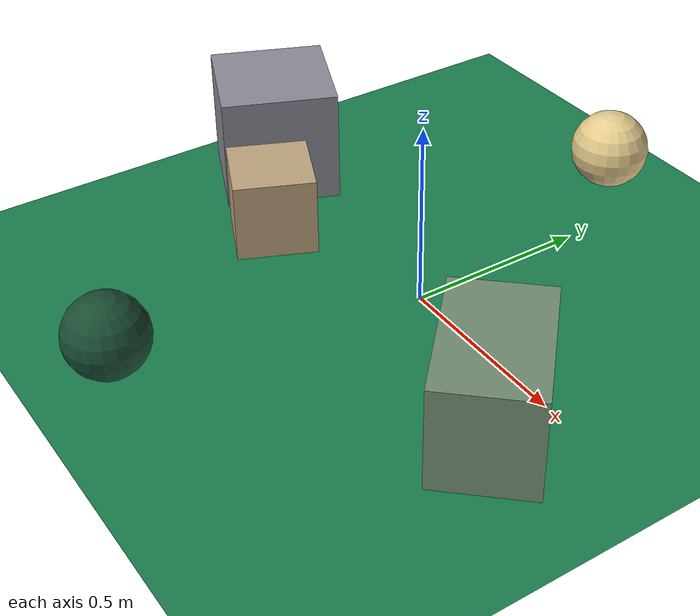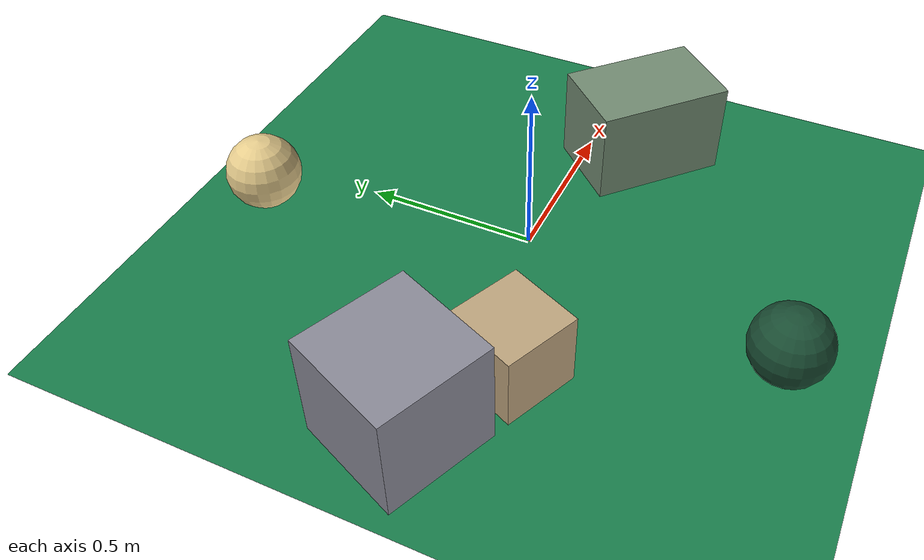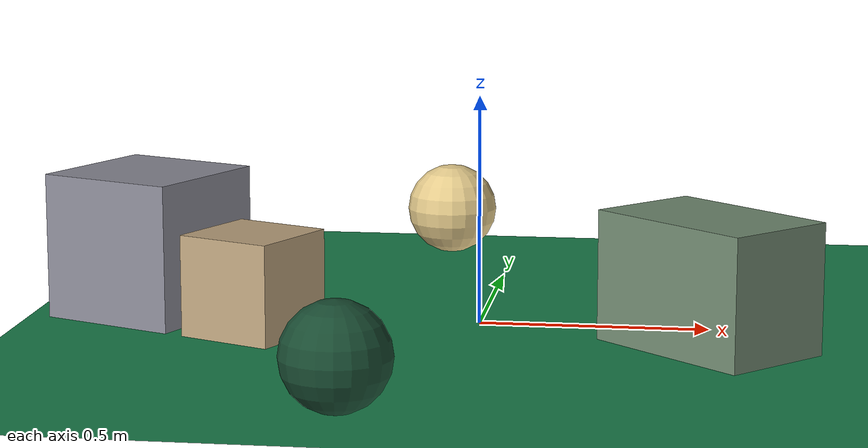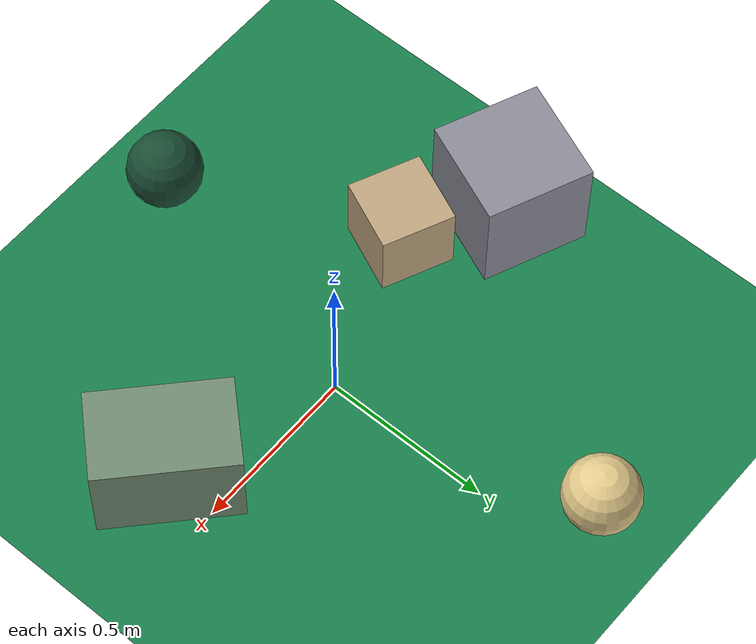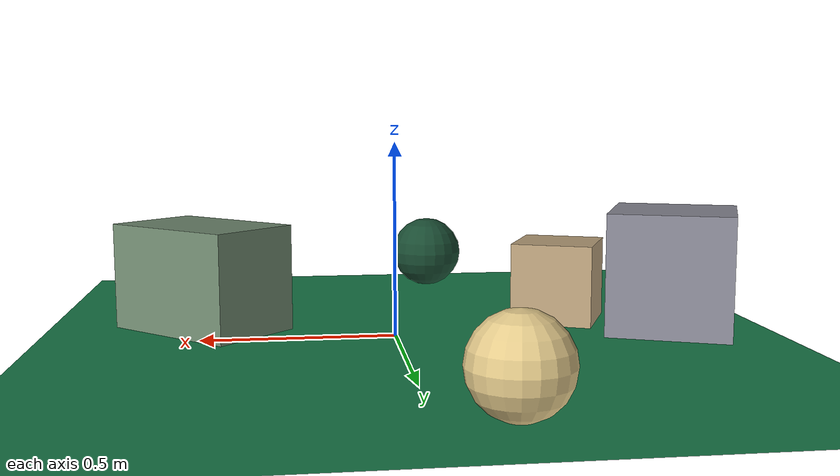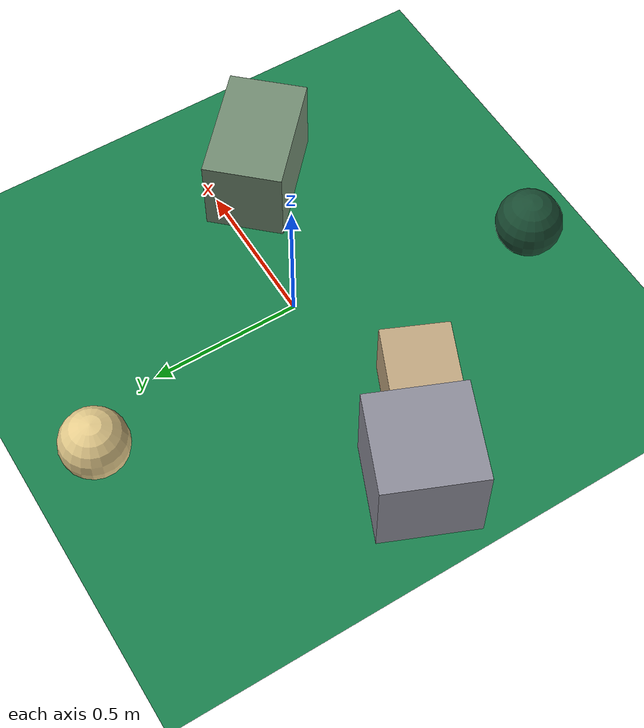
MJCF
<mujoco>
   <asset>
<texture type="skybox" builtin="gradient" rgb1="0.7 0.2 0.3" rgb2="0.8 0.5 0.6" width="500" height="500"/>
<texture name="checker_0" builtin="checker" rgb1="0.5 0.3 0.6" rgb2="0.4 0.8 0.3" width="500" height="500"/>
<texture name="flat_1" builtin="flat" rgb1="0.1 0.3 0.2" rgb2="0.1 0.3 0.2"  width="500" height="500"/>
<texture name="gradient_2" builtin="gradient" rgb1="0.3 0.7 0.3" rgb2="0.8 0.4 0.9" width="500" height="500"/>
<texture name="gradient_3" builtin="gradient" rgb1="0.8 0.5 0.1" rgb2="0.7 0.8 0.9" width="500" height="500"/>
<texture name="checker_4" builtin="checker" rgb1="0.9 0.7 0.2" rgb2="0.9 0.9 0.9" width="500" height="500"/><material name="checker_0_mat" reflectance="0.2567959847771437" texrepeat="2 2" texture="checker_0" texuniform="false" />
<material name="flat_1_mat" reflectance="0.9667274485027453" texture="flat_1" texuniform="true"/>
<material name="gradient_2_mat" reflectance="0.1589441841812108" texture="gradient_2" texuniform="true"/>
<material name="gradient_3_mat" reflectance="0.756241724418551" texture="gradient_3" texuniform="true"/>
<material name="checker_4_mat" reflectance="0.08079242749848536" texrepeat="7 7" texture="checker_4" texuniform="false" />
   </asset>

   <worldbody>
     <geom type="plane" size="1 1 0.1" rgba="0.1 0.5 0.3 1" />
<light pos="-0.4730337232574324 -0.21186831987668153 2" dir="0 0 -1" cutoff="90" diffuse="1 1 1" specular="1 1 1"/>
<geom type="box" pos="0.5 -0.16 0.14" size="0.13 0.2 0.14" material="checker_0_mat" euler="0 0 47" />
<geom type="sphere" pos="-0.18 -0.78 0.11" size="0.11 0.11 0.11" material="flat_1_mat" euler="0 0 44" />
<geom type="box" pos="-0.74 0.01 0.16" size="0.16 0.16 0.16" material="gradient_2_mat" euler="0 0 67" />
<geom type="box" pos="-0.47 -0.16 0.11" size="0.11 0.11 0.11" material="gradient_3_mat" euler="0 0 66" />
<geom type="sphere" pos="-0.16 0.78 0.11" size="0.11 0.11 0.11" material="checker_4_mat" euler="0 0 61" /><camera euler="60 0 180" fovy="60" name="camera1" pos="-0.2 -1.5 1"></camera>   </worldbody>
   <visual>
      <headlight diffuse="0.7 0.7 0.7"/>
   </visual>
</mujoco>
